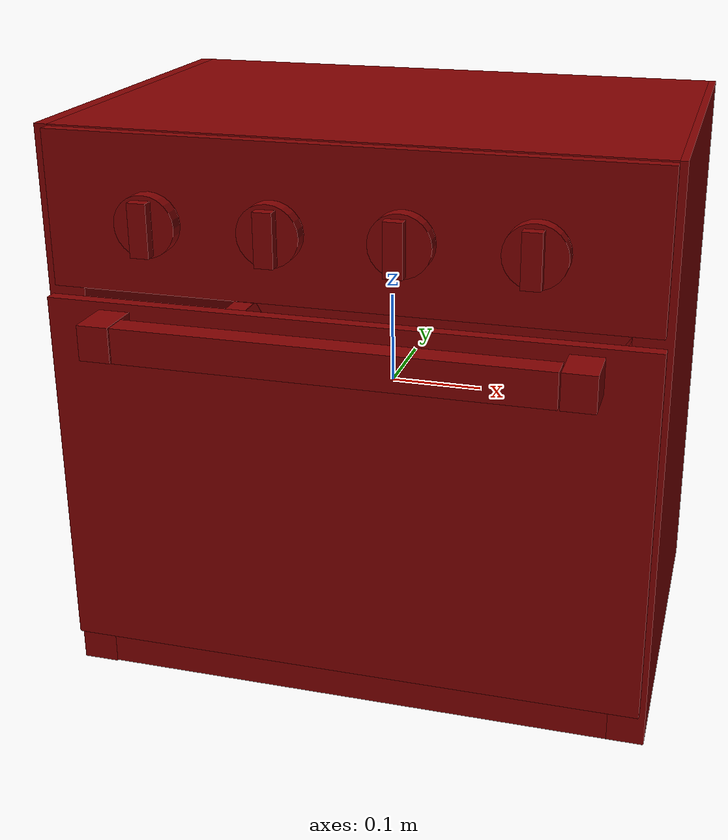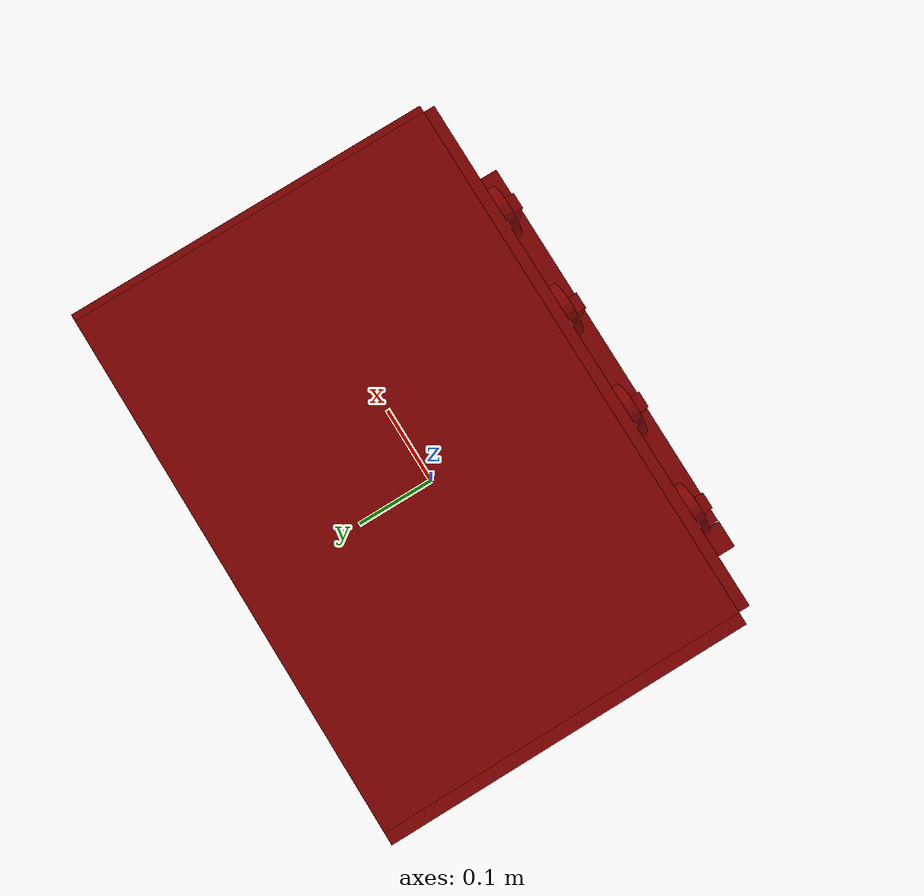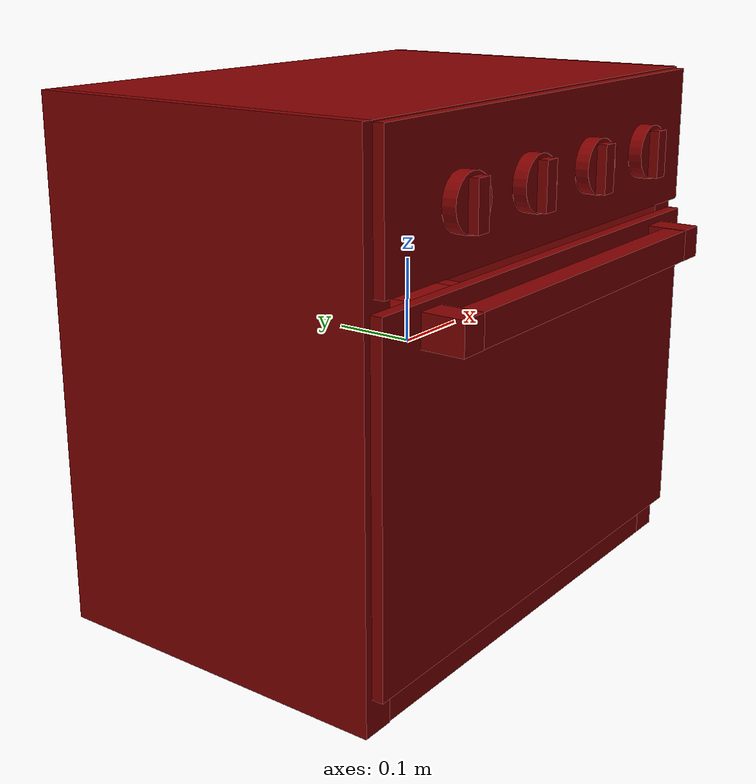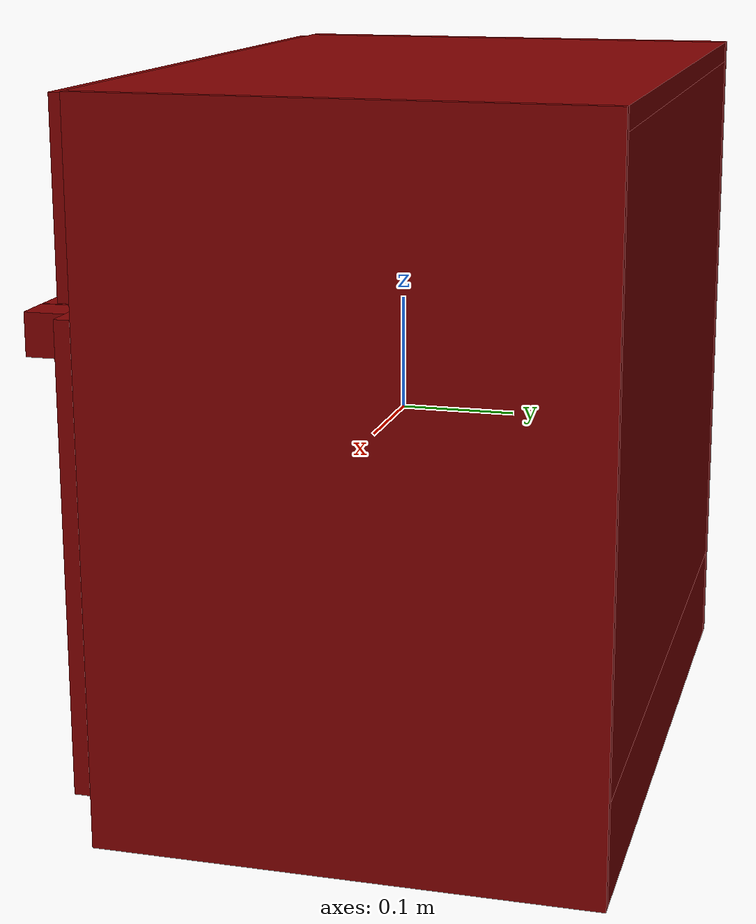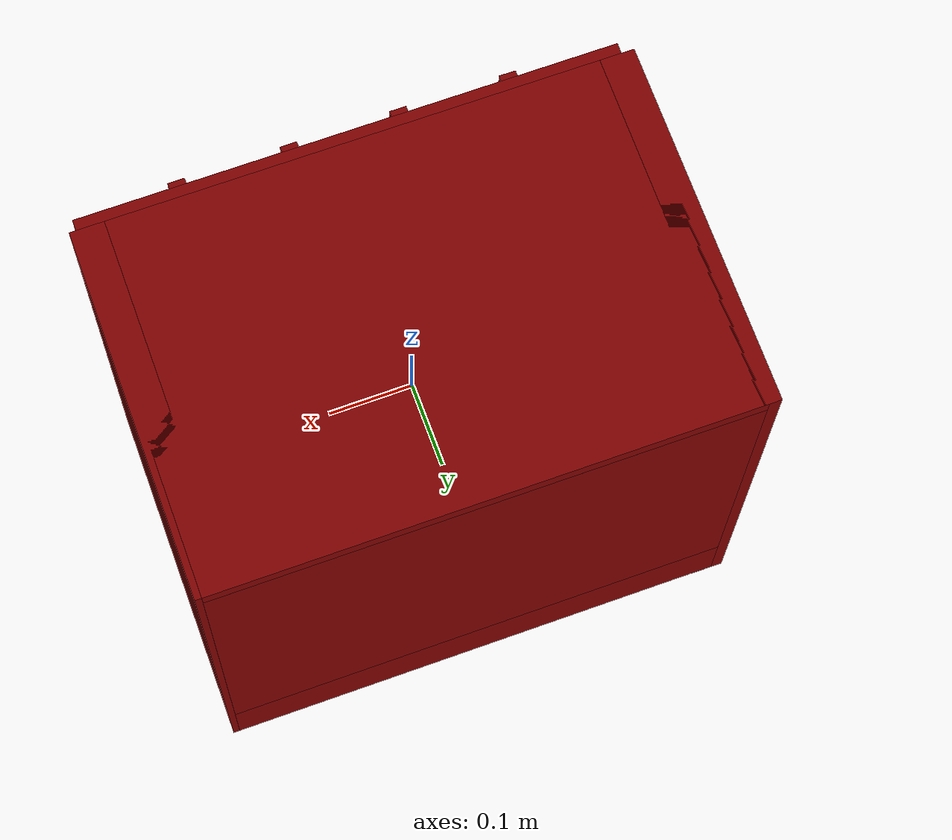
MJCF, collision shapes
<?xml version='1.0' encoding='UTF-8'?>
<mujoco model="model">
  <option timestep="0.002" gravity="0.0 0.0 -9.81"/>
  <compiler angle="radian"/>
  <asset>
    <mesh file="visuals/door.obj" name="door_vis"/>
    <mesh file="visuals/knob_doneness.obj" name="knob_doneness_vis"/>
    <mesh file="visuals/knob_function.obj" name="knob_function_vis"/>
    <mesh file="visuals/knob_temp.obj" name="knob_temp_vis"/>
    <mesh file="visuals/knob_time.obj" name="knob_time_vis"/>
    <mesh file="visuals/rack0.obj" name="rack0_vis"/>
    <mesh file="visuals/rack1.obj" name="rack1_vis"/>
    <mesh file="visuals/Body001.obj" name="Body001_vis"/>
    <mesh file="visuals/window.obj" name="window_vis"/>
    <texture file="visuals/T_BC001.png" name="Body001_material" type="2d"/>
    <material name="Body001_material" rgba="1 1 1 1.0" texture="Body001_material" shininess="0.1" specular="5"/>
    <texture file="visuals/T_BC001.png" name="door_material" type="2d"/>
    <material name="door_material" rgba="1 1 1 1.0" texture="door_material" shininess="0.1" specular="5"/>
    <material name="window_material" rgba="0.1519247144460678 0.1519247144460678 0.1519247144460678 0.800000011920929" shininess="0.5" specular="0.3103448502657381"/>
    <texture file="visuals/T_BC001.png" name="knob_doneness_material" type="2d"/>
    <material name="knob_doneness_material" rgba="1 1 1 1.0" texture="knob_doneness_material" shininess="0.1" specular="5"/>
    <texture file="visuals/T_BC001.png" name="knob_function_material" type="2d"/>
    <material name="knob_function_material" rgba="1 1 1 1.0" texture="knob_function_material" shininess="0.1" specular="5"/>
    <texture file="visuals/T_BC001.png" name="knob_temp_material" type="2d"/>
    <material name="knob_temp_material" rgba="1 1 1 1.0" texture="knob_temp_material" shininess="0.1" specular="5"/>
    <texture file="visuals/T_BC001.png" name="knob_time_material" type="2d"/>
    <material name="knob_time_material" rgba="1 1 1 1.0" texture="knob_time_material" shininess="0.1" specular="5"/>
    <texture file="visuals/T_BC001.png" name="rack0_material" type="2d"/>
    <material name="rack0_material" rgba="1 1 1 1.0" texture="rack0_material" shininess="0.1" specular="5"/>
    <texture file="visuals/T_BC001.png" name="rack1_material" type="2d"/>
    <material name="rack1_material" rgba="1 1 1 1.0" texture="rack1_material" shininess="0.1" specular="5"/>
  </asset>
  <default>
    <default class="visual">
      <geom conaffinity="0" contype="0" group="1" type="mesh"/>
    </default>
    <default class="collision">
      <geom group="0" rgba="0.5 0 0 0.5"/>
    </default>
    <default class="spawn">
      <geom group="0" rgba="1 1 1 0.5" contype="0" conaffinity="0"/>
      <site group="0" rgba="1 1 1 0.5"/>
    </default>
    <default class="region">
      <geom group="1" conaffinity="0" contype="0" rgba="0 1 0 0"/>
    </default>
  </default>
  <worldbody>
    <body>
      <body name="object">
        <geom mesh="Body001_vis" type="mesh" solimp="0.998 0.998 0.001" solref="0.001 1" friction="0.95 0.3 0.1" class="visual" material="Body001_material"/>
        <geom class="collision" type="box" pos="-0.29664424 0.03283489 0.00072977" size="0.019728386774659157 0.21107806265354156 0.30643755197525024" quat="1.0 0.0 0.0 0.0"/>
        <geom class="collision" type="box" pos="0.29736811 0.03283485 0.00136103" size="0.01933366246521473 0.2110782116651535 0.3058062791824341" quat="1.0 0.0 0.0 0.0"/>
        <geom class="collision" type="box" pos="0.00344899 0.03283484 0.29562582" size="0.3056963384151459 0.21107839047908783 0.011541559360921383" quat="1.0 0.0 0.0 0.0"/>
        <geom class="collision" type="box" pos="0.00344899 0.03283532 -0.25786899" size="0.3056963384151459 0.2110779881477356 0.04657629504799843" quat="1.0 0.0 0.0 0.0"/>
        <geom class="collision" type="box" pos="0.00344900 -0.18053210 0.22559871" size="0.3056963384151459 0.010608079843223095 0.08002576977014542" quat="1.0 0.0 0.0 0.0"/>
        <geom class="collision" type="box" pos="-0.27226260 0.04035950 -0.01565137" size="0.012897388078272343 0.18651673197746277 0.0038140853866934776" quat="1.0 0.0 0.0 0.0"/>
        <geom class="collision" type="box" pos="-0.27226260 0.04035950 -0.16473918" size="0.012897388078272343 0.18651673197746277 0.0038140853866934776" quat="1.0 0.0 0.0 0.0"/>
        <geom class="collision" type="box" pos="0.27328110 0.04035950 -0.16473918" size="0.012897388078272343 0.18651673197746277 0.0038140853866934776" quat="1.0 0.0 0.0 0.0"/>
        <geom class="collision" type="box" pos="0.27328110 0.04035950 -0.01565137" size="0.012897388078272343 0.18651673197746277 0.0038140853866934776" quat="1.0 0.0 0.0 0.0"/>
        <geom class="collision" type="box" pos="0.00344900 0.23388569 0.03568574" size="0.3056963384151459 0.010031022131443024 0.25294944643974304" quat="1.0 0.0 0.0 0.0"/>
        <body name="door">
          <joint axis="1.0 0.0 0.0" pos="-0.00000075 -0.17895235 -0.26965033" limited="true" name="door_joint" range="0.0 1.4507963267948966" type="hinge" damping="1" frictionloss="10" armature=".01" stiffness="0.5" springref="-0.5"/>
          <geom mesh="door_vis" type="mesh" solimp="0.998 0.998 0.001" solref="0.001 1" friction="0.95 0.3 0.1" class="visual" material="door_material"/>
          <geom class="collision" type="box" pos="0.00000000 -0.18786083 -0.06430066" size="0.3108465373516083 0.006727311760187149 0.19733445346355438" quat="1.0 0.0 0.0 0.0" name="door_main"/>
          <geom class="collision" type="box" pos="0.00160041 -0.23155596 0.10702397" size="0.21984070539474487 0.013336683623492718 0.018378378823399544" quat="1.0 0.0 0.0 0.0" name="door_handle_main"/>
          <geom class="collision" type="box" pos="0.24014665 -0.22095168 0.10702397" size="0.01685967668890953 0.024021001532673836 0.018470652401447296" quat="1.0 0.0 0.0 0.0"/>
          <geom class="collision" type="box" pos="-0.23621181 -0.22099696 0.10702397" size="0.016437046229839325 0.024443643167614937 0.018470652401447296" quat="1.0 0.0 0.0 0.0"/>
          <body name="window">
            <geom mesh="window_vis" type="mesh" solimp="0.998 0.998 0.001" solref="0.001 1" friction="0.95 0.3 0.1" class="visual" material="window_material"/>
            <geom class="collision" type="box" pos="0.00355375 -0.18285486 -0.06972388" size="0.24304544925689697 0.0016607410507276654 0.13691775500774384" quat="1.0 0.0 0.0 0.0"/>
          </body>
        </body>
        <body name="knob_doneness">
          <joint axis="0.0 1.0 0.0" pos="0.19046614 -0.20895604 0.22132569" limited="true" name="knob_doneness_joint" range="0.0 4.71238898038469" type="hinge" damping="0.05" armature="1" frictionloss="0.75"/>
          <geom mesh="knob_doneness_vis" type="mesh" solimp="0.998 0.998 0.001" solref="0.001 1" friction="0.95 0.3 0.1" class="visual" material="knob_doneness_material"/>
          <geom class="collision" type="cylinder" pos="0.19083473 -0.20450966 0.22015360" size="0.03125251829624176 0.0081293024122715" quat="0.7071067094802856 0.7071068286895752 -1.5700929612083792e-16 2.2148510003422914e-23" friction="100 0.5 0.01"/>
          <geom class="collision" type="box" pos="0.18956956 -0.21812949 0.21906128" size="0.00964608695358038 0.006053298246115446 0.027127230539917946" quat="1.0 0.0 0.0 0.0" name="knob_doneness_main" friction="100 0.5 0.01"/>
        </body>
        <body name="knob_function">
          <joint axis="0.0 1.0 0.0" pos="0.06265580 -0.20895604 0.22132569" limited="true" name="knob_function_joint" range="-1.5707963267948966 1.5707963267948966" type="hinge" damping="0.05" armature="1" frictionloss="0.75"/>
          <geom mesh="knob_function_vis" type="mesh" solimp="0.998 0.998 0.001" solref="0.001 1" friction="0.95 0.3 0.1" class="visual" material="knob_function_material"/>
          <geom class="collision" type="cylinder" pos="0.06496431 -0.20450966 0.22015360" size="0.03125251829624176 0.0081293024122715" quat="0.7071067094802856 0.7071068286895752 -1.5700929612083792e-16 2.2148510003422914e-23" friction="100 0.5 0.01"/>
          <geom class="collision" type="box" pos="0.06183717 -0.21812949 0.21906128" size="0.00964608695358038 0.006053298246115446 0.027127230539917946" quat="1.0 0.0 0.0 0.0" name="knob_function_main" friction="100 0.5 0.01"/>
        </body>
        <body name="knob_temp">
          <joint axis="0.0 1.0 0.0" pos="-0.06274652 -0.20895604 0.22058476" limited="true" name="knob_temp_joint" range="0.0 4.71238898038469" type="hinge" damping="0.05" armature="1" frictionloss="0.75"/>
          <geom mesh="knob_temp_vis" type="mesh" solimp="0.998 0.998 0.001" solref="0.001 1" friction="0.95 0.3 0.1" class="visual" material="knob_temp_material"/>
          <geom class="collision" type="cylinder" pos="-0.06368558 -0.20450966 0.22015360" size="0.03125251829624176 0.0081293024122715" quat="0.7071067094802856 0.7071068286895752 -1.5700929612083792e-16 2.2148510003422914e-23" friction="100 0.5 0.01"/>
          <geom class="collision" type="box" pos="-0.06369800 -0.21812949 0.21906128" size="0.00964608695358038 0.006053298246115446 0.027127230539917946" quat="1.0 0.0 0.0 0.0" name="knob_temp_main" friction="100 0.5 0.01"/>
        </body>
        <body name="knob_time">
          <joint axis="0.0 1.0 0.0" pos="-0.18966773 -0.20895604 0.21969564" limited="true" name="knob_time_joint" range="0.0 4.71238898038469" type="hinge" damping="0.05" armature="1" frictionloss="0.75"/>
          <geom mesh="knob_time_vis" type="mesh" solimp="0.998 0.998 0.001" solref="0.001 1" friction="0.95 0.3 0.1" class="visual" material="knob_time_material"/>
          <geom class="collision" type="cylinder" pos="-0.18955600 -0.20450966 0.22015360" size="0.03125251829624176 0.0081293024122715" quat="0.7071067094802856 0.7071068286895752 -1.5700929612083792e-16 2.2148510003422914e-23" friction="100 0.5 0.01"/>
          <geom class="collision" type="box" pos="-0.19035722 -0.21812949 0.21906128" size="0.00964608695358038 0.006053298246115446 0.027127230539917946" quat="1.0 0.0 0.0 0.0" name="knob_time_main" friction="100 0.5 0.01"/>
        </body>
        <body name="rack0">
          <geom class="region" name="reg_rack0" type="box" pos="-0.0013331649999999973 0.03442706999999999 -0.108333335" size="0.225637255 0.17192295000000002 0.064109105"/>
          <joint axis="0.0 -1.0 0.0" pos="-0.00120229 0.04361541 -0.17411556" limited="true" name="rack0_joint" range="0.0 0.20" type="slide" damping="1" frictionloss="1" armature=".01" stiffness="0.05"/>
          <geom mesh="rack0_vis" type="mesh" solimp="0.998 0.998 0.001" solref="0.001 1" friction="0.95 0.3 0.1" class="visual" material="rack0_material"/>
          <geom class="collision" type="box" pos="-0.00038659 0.03235617 -0.18281761" size="0.2308759093284607 0.17696762084960938 0.0045929839834570885" quat="1.0 0.0 0.0 0.0"/>
          <geom class="collision" type="box" pos="0.23743704 0.03235617 -0.17161909" size="0.020615795627236366 0.17696762084960938 0.004592908546328545" quat="0.8788831830024719 5.922530176650847e-15 -0.4770370125770569 1.6328288054978657e-08"/>
          <geom class="collision" type="box" pos="0.25903252 0.03235617 -0.15644637" size="0.014445713721215725 0.17697034776210785 0.003265595529228449" quat="1.0 0.0 0.0 0.0"/>
          <geom class="collision" type="box" pos="-0.23936182 0.03235617 -0.17161909" size="0.020615795627236366 0.17696762084960938 0.004592908546328545" quat="0.5048431754112244 3.097025877397096e-14 -0.8632110953330994 2.954640088148608e-08"/>
          <geom class="collision" type="box" pos="-0.26089698 0.03235617 -0.15621025" size="0.014445713721215725 0.17697015404701233 0.0031455443240702152" quat="1.0 0.0 0.0 0.0"/>
        </body>
        <body name="rack1">
          <geom class="region" name="reg_rack1" type="box" pos="-0.0013331649999999973 0.03442706999999999 0.04911861000000001" size="0.225637255 0.17192295000000002 0.07260817"/>
          <joint axis="0.0 -1.0 0.0" pos="-0.00115861 0.04292504 -0.02423858" limited="true" name="rack1_joint" range="0.0 0.20" type="slide" damping="1" frictionloss="1" armature=".01" stiffness="0.05"/>
          <geom mesh="rack1_vis" type="mesh" solimp="0.998 0.998 0.001" solref="0.001 1" friction="0.95 0.3 0.1" class="visual" material="rack1_material"/>
          <geom class="collision" type="box" pos="-0.00038659 0.03381584 -0.03324805" size="0.2308759093284607 0.17696762084960938 0.004592998884618282" quat="1.0 0.0 0.0 0.0"/>
          <geom class="collision" type="box" pos="0.23743704 0.03381584 -0.01978588" size="0.020615795627236366 0.17696762084960938 0.004592908546328545" quat="0.8788831830024719 5.922530176650847e-15 -0.4770370125770569 1.6328288054978657e-08"/>
          <geom class="collision" type="box" pos="0.25903252 0.03381584 -0.00611391" size="0.014445713721215725 0.17697091400623322 0.004766328725963831" quat="1.0 0.0 0.0 0.0"/>
          <geom class="collision" type="box" pos="-0.23936182 0.03381584 -0.01978588" size="0.020615795627236366 0.17696762084960938 0.004592908546328545" quat="0.5048431754112244 3.097025877397096e-14 -0.8632110953330994 2.954640088148608e-08"/>
          <geom class="collision" type="box" pos="-0.26089698 0.03381584 -0.00599782" size="0.014445713721215725 0.1769707202911377 0.004766328725963831" quat="1.0 0.0 0.0 0.0"/>
        </body>
        <geom class="region" name="reg_int" type="box" pos="0.002689625000000001 0.02887473 0.037124395000000004" size="0.26700867500000003 0.19326358 0.242281345"/>
        <geom class="region" name="reg_main" type="box" pos="0.0001645799999999975 0.023536199999999993 -1.0149999999931048e-06" size="0.31753719999999996 0.22138053000000002 0.308168365"/>
      </body>
    </body>
  </worldbody>
  <actuator>
    <motor name="door_joint_actuator" joint="door_joint" gear="50"/>
    <motor name="knob_doneness_joint_actuator" joint="knob_doneness_joint" gear="50"/>
    <motor name="knob_function_joint_actuator" joint="knob_function_joint" gear="50"/>
    <motor name="knob_temp_joint_actuator" joint="knob_temp_joint" gear="50"/>
    <motor name="knob_time_joint_actuator" joint="knob_time_joint" gear="50"/>
    <motor name="rack0_joint_actuator" joint="rack0_joint" gear="50"/>
    <motor name="rack1_joint_actuator" joint="rack1_joint" gear="50"/>
  </actuator>
</mujoco>
